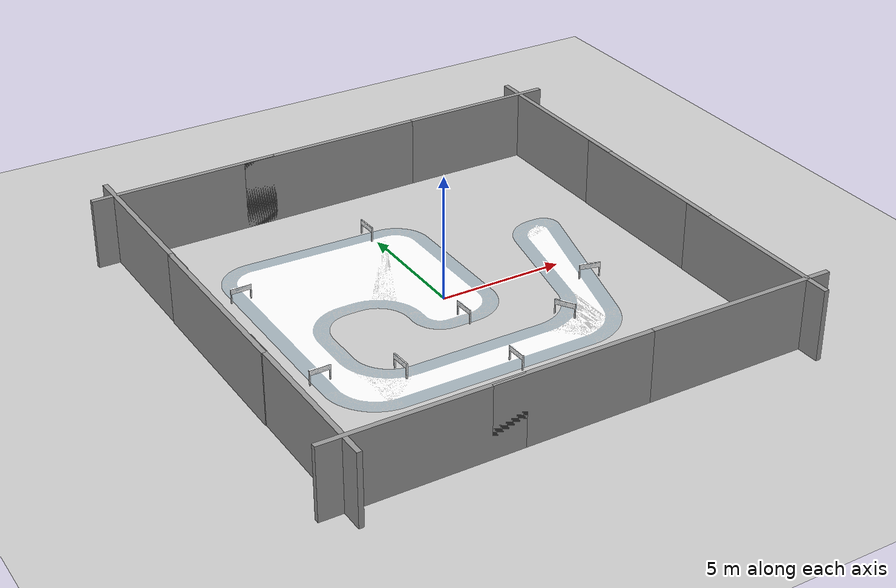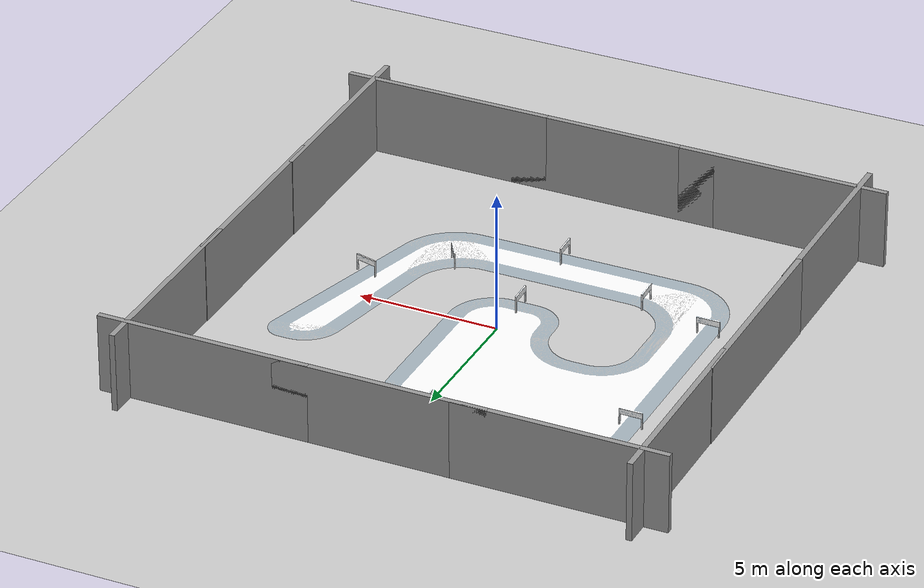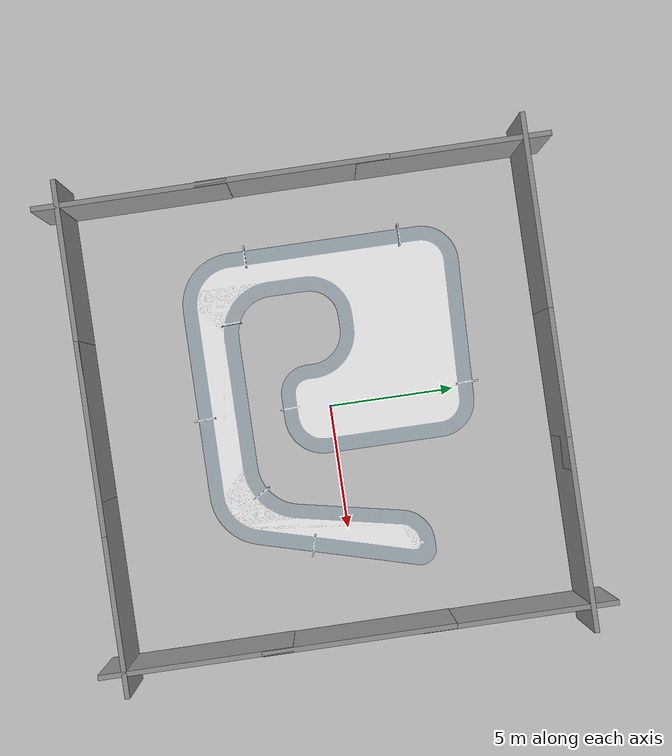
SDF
<sdf version="1.6">
    <world name="default">
        <gui fullscreen="0">
            <camera name="user_camera">
                <pose frame="">-1.6716 -6.77912 0.774492 0 0.215643 0.87619</pose>
                <view_controller>orbit</view_controller>
                <projection_type>perspective</projection_type>
            </camera>
        </gui>

        <!-- A ground plane -->
        <include>
            <uri>model://ground_plane</uri>
        </include>

        <gravity>0 0 -9.8</gravity>
        <magnetic_field>6e-06 2.3e-05 -4.2e-05</magnetic_field>
        <atmosphere type="adiabatic" />

        <physics name="default_physics" default="0" type="ode">
            <max_step_size>0.001</max_step_size>
            <real_time_factor>1</real_time_factor>
            <real_time_update_rate>1000</real_time_update_rate>
        </physics>

        <scene>
            <ambient>0.4 0.4 0.4 1</ambient>
            <background>0.7 0.7 0.7 1</background>
            <shadows>1</shadows>
        </scene>

        <light name="sun" type="directional">
            <cast_shadows>1</cast_shadows>
            <pose frame="">0 0 10 0 -0 0</pose>
            <diffuse>0.8 0.8 0.8 1</diffuse>
            <specular>0.1 0.1 0.1 1</specular>
            <attenuation>
                <range>1000</range>
                <constant>0.9</constant>
                <linear>0.01</linear>
                <quadratic>0.001</quadratic>
            </attenuation>
            <direction>-0.5 0.5 -1</direction>
        </light>

        <spherical_coordinates>
            <surface_model>EARTH_WGS84</surface_model>
            <latitude_deg>0</latitude_deg>
            <longitude_deg>0</longitude_deg>
            <elevation>0</elevation>
            <heading_deg>0</heading_deg>
        </spherical_coordinates>

        <include>
            <uri>model://stonewall</uri>
            <name>stonewall</name>
            <pose frame="">-0.034148 -0.218558 -0.0 0 -0 0</pose>
        </include>

        <include>
            <uri>model://race_track</uri>
            <name>race_track</name>
            <pose frame="">-9.0 -8.5 0.0 0 -0 0</pose>
        </include>

        <light type="point" name="under">
            <pose>0 0 -1 0 0 0</pose>
            <diffuse>1 1 1 1</diffuse>
            <specular>1 1 1 1</specular>
            <attenuation>
                <range>0</range>
                <linear>0</linear>
                <constant>0</constant>
                <quadratic>0</quadratic>
            </attenuation>
            <cast_shadows>false</cast_shadows>
        </light>

    </world>

</sdf>

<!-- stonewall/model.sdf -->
<sdf version='1.6'>
  <model name='stonewall'>
    <model name='grey_wall'>
      <static>1</static>
      <link name='link'>
        <pose frame=''>0 0 1.4 0 -0 0</pose>
        <collision name='collision'>
          <geometry>
            <box>
              <size>7.5 0.2 2.8</size>
            </box>
          </geometry>
        </collision>
        <visual name='visual'>
          <cast_shadows>0</cast_shadows>
          <geometry>
            <box>
              <size>7.5 0.2 2.8</size>
            </box>
          </geometry>
          <material>
            <script>
              <uri>model://grey_wall/materials/scripts</uri>
              <uri>model://grey_wall/materials/textures</uri>
              <name>vrc/grey_wall</name>
            </script>
          </material>
        </visual>
      </link>
      <pose frame=''>-6.21549 -9.00567 0 0 -0 0</pose>
    </model>
    <model name='grey_wall_0'>
      <static>1</static>
      <link name='link'>
        <pose frame=''>0 0 1.4 0 -0 0</pose>
        <collision name='collision'>
          <geometry>
            <box>
              <size>7.5 0.2 2.8</size>
            </box>
          </geometry>
        </collision>
        <visual name='visual'>
          <cast_shadows>0</cast_shadows>
          <geometry>
            <box>
              <size>7.5 0.2 2.8</size>
            </box>
          </geometry>
          <material>
            <script>
              <uri>model://grey_wall/materials/scripts</uri>
              <uri>model://grey_wall/materials/textures</uri>
              <name>vrc/grey_wall</name>
            </script>
          </material>
        </visual>
      </link>
      <pose frame=''>-8.96556 -6.24851 0 0 -0 1.57372</pose>
    </model>
    <model name='grey_wall_0_clone'>
      <static>1</static>
      <link name='link'>
        <pose frame=''>0 0 1.4 0 -0 0</pose>
        <collision name='collision'>
          <geometry>
            <box>
              <size>7.5 0.2 2.8</size>
            </box>
          </geometry>
        </collision>
        <visual name='visual'>
          <cast_shadows>0</cast_shadows>
          <geometry>
            <box>
              <size>7.5 0.2 2.8</size>
            </box>
          </geometry>
          <material>
            <script>
              <uri>model://grey_wall/materials/scripts</uri>
              <uri>model://grey_wall/materials/textures</uri>
              <name>vrc/grey_wall</name>
            </script>
          </material>
        </visual>
      </link>
      <pose frame=''>-9.00936 6.24215 0 0 -0 1.57372</pose>
    </model>
    <model name='grey_wall_0_clone_0'>
      <static>1</static>
      <link name='link'>
        <pose frame=''>0 0 1.4 0 -0 0</pose>
        <collision name='collision'>
          <geometry>
            <box>
              <size>7.5 0.2 2.8</size>
            </box>
          </geometry>
        </collision>
        <visual name='visual'>
          <cast_shadows>0</cast_shadows>
          <geometry>
            <box>
              <size>7.5 0.2 2.8</size>
            </box>
          </geometry>
          <material>
            <script>
              <uri>model://grey_wall/materials/scripts</uri>
              <uri>model://grey_wall/materials/textures</uri>
              <name>vrc/grey_wall</name>
            </script>
          </material>
        </visual>
      </link>
      <pose frame=''>-9.01007 0.032512 0 0 -0 1.57372</pose>
    </model>
    <model name='grey_wall_0_clone_1'>
      <static>1</static>
      <link name='link'>
        <pose frame=''>0 0 1.4 0 -0 0</pose>
        <collision name='collision'>
          <geometry>
            <box>
              <size>7.5 0.2 2.8</size>
            </box>
          </geometry>
        </collision>
        <visual name='visual'>
          <cast_shadows>0</cast_shadows>
          <geometry>
            <box>
              <size>7.5 0.2 2.8</size>
            </box>
          </geometry>
          <material>
            <script>
              <uri>model://grey_wall/materials/scripts</uri>
              <uri>model://grey_wall/materials/textures</uri>
              <name>vrc/grey_wall</name>
            </script>
          </material>
        </visual>
      </link>
      <pose frame=''>8.99078 -6.26114 0 0 -0 1.57372</pose>
    </model>
    <model name='grey_wall_0_clone_1_clone'>
      <static>1</static>
      <link name='link'>
        <pose frame=''>0 0 1.4 0 -0 0</pose>
        <collision name='collision'>
          <geometry>
            <box>
              <size>7.5 0.2 2.8</size>
            </box>
          </geometry>
        </collision>
        <visual name='visual'>
          <cast_shadows>0</cast_shadows>
          <geometry>
            <box>
              <size>7.5 0.2 2.8</size>
            </box>
          </geometry>
          <material>
            <script>
              <uri>model://grey_wall/materials/scripts</uri>
              <uri>model://grey_wall/materials/textures</uri>
              <name>vrc/grey_wall</name>
            </script>
          </material>
        </visual>
      </link>
      <pose frame=''>8.98933 6.23505 0 0 -0 1.57372</pose>
    </model>
    <model name='grey_wall_0_clone_1_clone_0'>
      <static>1</static>
      <link name='link'>
        <pose frame=''>0 0 1.4 0 -0 0</pose>
        <collision name='collision'>
          <geometry>
            <box>
              <size>7.5 0.2 2.8</size>
            </box>
          </geometry>
        </collision>
        <visual name='visual'>
          <cast_shadows>0</cast_shadows>
          <geometry>
            <box>
              <size>7.5 0.2 2.8</size>
            </box>
          </geometry>
          <material>
            <script>
              <uri>model://grey_wall/materials/scripts</uri>
              <uri>model://grey_wall/materials/textures</uri>
              <name>vrc/grey_wall</name>
            </script>
          </material>
        </visual>
      </link>
      <pose frame=''>8.9913 0.033922 0 0 -0 1.57372</pose>
    </model>
    <model name='grey_wall_clone'>
      <static>1</static>
      <link name='link'>
        <pose frame=''>0 0 1.4 0 -0 0</pose>
        <collision name='collision'>
          <geometry>
            <box>
              <size>7.5 0.2 2.8</size>
            </box>
          </geometry>
        </collision>
        <visual name='visual'>
          <cast_shadows>0</cast_shadows>
          <geometry>
            <box>
              <size>7.5 0.2 2.8</size>
            </box>
          </geometry>
          <material>
            <script>
              <uri>model://grey_wall/materials/scripts</uri>
              <uri>model://grey_wall/materials/textures</uri>
              <name>vrc/grey_wall</name>
            </script>
          </material>
        </visual>
      </link>
      <pose frame=''>-0.009962 -9.00567 0 0 -0 0</pose>
    </model>
    <model name='grey_wall_clone_0'>
      <static>1</static>
      <link name='link'>
        <pose frame=''>0 0 1.4 0 -0 0</pose>
        <collision name='collision'>
          <geometry>
            <box>
              <size>7.5 0.2 2.8</size>
            </box>
          </geometry>
        </collision>
        <visual name='visual'>
          <cast_shadows>0</cast_shadows>
          <geometry>
            <box>
              <size>7.5 0.2 2.8</size>
            </box>
          </geometry>
          <material>
            <script>
              <uri>model://grey_wall/materials/scripts</uri>
              <uri>model://grey_wall/materials/textures</uri>
              <name>vrc/grey_wall</name>
            </script>
          </material>
        </visual>
      </link>
      <pose frame=''>6.19421 -9.00567 0 0 -0 0</pose>
    </model>
    <model name='grey_wall_clone_1'>
      <static>1</static>
      <link name='link'>
        <pose frame=''>0 0 1.4 0 -0 0</pose>
        <collision name='collision'>
          <geometry>
            <box>
              <size>7.5 0.2 2.8</size>
            </box>
          </geometry>
        </collision>
        <visual name='visual'>
          <cast_shadows>0</cast_shadows>
          <geometry>
            <box>
              <size>7.5 0.2 2.8</size>
            </box>
          </geometry>
          <material>
            <script>
              <uri>model://grey_wall/materials/scripts</uri>
              <uri>model://grey_wall/materials/textures</uri>
              <name>vrc/grey_wall</name>
            </script>
          </material>
        </visual>
      </link>
      <pose frame=''>-6.20636 8.99433 0 0 -0 0</pose>
    </model>
    <model name='grey_wall_clone_1_clone'>
      <static>1</static>
      <link name='link'>
        <pose frame=''>0 0 1.4 0 -0 0</pose>
        <collision name='collision'>
          <geometry>
            <box>
              <size>7.5 0.2 2.8</size>
            </box>
          </geometry>
        </collision>
        <visual name='visual'>
          <cast_shadows>0</cast_shadows>
          <geometry>
            <box>
              <size>7.5 0.2 2.8</size>
            </box>
          </geometry>
          <material>
            <script>
              <uri>model://grey_wall/materials/scripts</uri>
              <uri>model://grey_wall/materials/textures</uri>
              <name>vrc/grey_wall</name>
            </script>
          </material>
        </visual>
      </link>
      <pose frame=''>6.24842 8.99433 0 0 -0 0</pose>
    </model>
    <model name='grey_wall_clone_1_clone_0'>
      <static>1</static>
      <link name='link'>
        <pose frame=''>0 0 1.4 0 -0 0</pose>
        <collision name='collision'>
          <geometry>
            <box>
              <size>7.5 0.2 2.8</size>
            </box>
          </geometry>
        </collision>
        <visual name='visual'>
          <cast_shadows>0</cast_shadows>
          <geometry>
            <box>
              <size>7.5 0.2 2.8</size>
            </box>
          </geometry>
          <material>
            <script>
              <uri>model://grey_wall/materials/scripts</uri>
              <uri>model://grey_wall/materials/textures</uri>
              <name>vrc/grey_wall</name>
            </script>
          </material>
        </visual>
      </link>
      <pose frame=''>0.002746 8.99433 0 0 -0 0</pose>
    </model>
    <static>0</static>
    <allow_auto_disable>1</allow_auto_disable>
  </model>
</sdf>

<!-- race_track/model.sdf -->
<sdf version="1.6">
  <model name="race_track">
    <link name="link_1">
      <pose frame="">1e-05 0 0 0 -0 0</pose>
      <inertial>
        <mass>1</mass>
        <inertia>
          <ixx>0.166667</ixx>
          <ixy>0</ixy>
          <ixz>0</ixz>
          <iyy>0.166667</iyy>
          <iyz>0</iyz>
          <izz>0.166667</izz>
        </inertia>
        <pose frame="">0 0 0 0 -0 0</pose>
      </inertial>
      <gravity>1</gravity>
      <self_collide>0</self_collide>
      <kinematic>0</kinematic>
      <visual name="visual">
        <pose frame="">0 0 0.001 0 -0 0</pose>
        <geometry>
          <mesh>
            <uri>model://race_track/meshes/model.dae</uri>
            <scale>0.015 0.015 0.015</scale>
          </mesh>
        </geometry>
        <cast_shadows>1</cast_shadows>
        <transparency>0</transparency>
      </visual>
      <collision name="collision">
        <laser_retro>0</laser_retro>
        <max_contacts>10</max_contacts>
        <pose frame="">0 0 -0.1 0 -0 0</pose>
        <geometry>
          <mesh>
            <uri>model://race_track/meshes/model.dae</uri>
            <scale>0.015 0.015 0.015</scale>
          </mesh>
        </geometry>
        <surface>
          <friction>
            <ode>
              <mu>1</mu>
              <mu2>1</mu2>
              <fdir1>0 0 0</fdir1>
              <slip1>0</slip1>
              <slip2>0</slip2>
            </ode>
            <torsional>
              <coefficient>1</coefficient>
              <patch_radius>0</patch_radius>
              <surface_radius>0</surface_radius>
              <use_patch_radius>1</use_patch_radius>
              <ode>
                <slip>0</slip>
              </ode>
            </torsional>
          </friction>
          <bounce>
            <restitution_coefficient>0</restitution_coefficient>
            <threshold>1e+06</threshold>
          </bounce>
          <contact>
            <collide_without_contact>0</collide_without_contact>
            <collide_without_contact_bitmask>1</collide_without_contact_bitmask>
            <collide_bitmask>1</collide_bitmask>
            <ode>
              <soft_cfm>0</soft_cfm>
              <soft_erp>0.2</soft_erp>
              <kp>1e+13</kp>
              <kd>1</kd>
              <max_vel>0.01</max_vel>
              <min_depth>0</min_depth>
            </ode>
            <bullet>
              <split_impulse>1</split_impulse>
              <split_impulse_penetration_threshold>-0.01</split_impulse_penetration_threshold>
              <soft_cfm>0</soft_cfm>
              <soft_erp>0.2</soft_erp>
              <kp>1e+13</kp>
              <kd>1</kd>
            </bullet>
          </contact>
        </surface>
      </collision>
    </link>
    <static>1</static>
    <allow_auto_disable>1</allow_auto_disable>
  </model>
</sdf>
